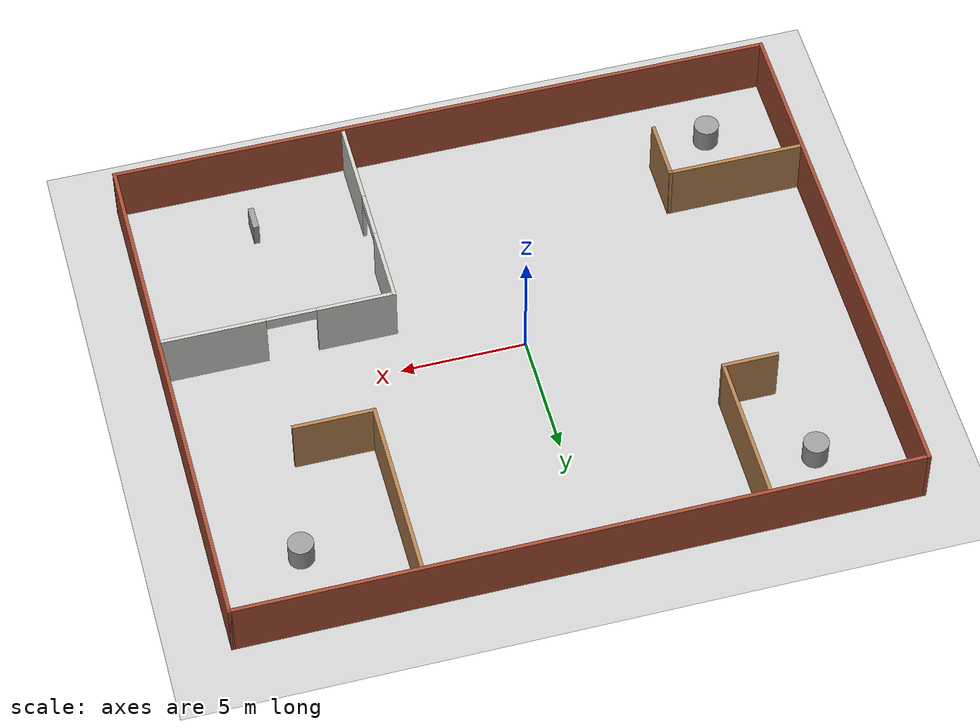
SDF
<sdf version="1.7">
 <world name="default">
  <light name="sun" type="directional">
   <pose>0 0 10 0 -0 0</pose>
   <diffuse>0.8 0.8 0.8 1</diffuse>
   <specular>0.2 0.2 0.2 1</specular>
   <attenuation>
    <range>1000</range>
    <constant>0.9</constant>
    <linear>0.01</linear>
    <quadratic>0.001</quadratic>
   </attenuation>
   <direction>-0.5 0.1 -0.9</direction>
   <spot><inner_angle>0</inner_angle><outer_angle>0</outer_angle><falloff>0</falloff></spot>
  </light>
  <model name="ground_plane">
   <static>1</static>
   <link name="link">
    <collision name="collision">
     <geometry><plane><normal>0 0 1</normal><size>100 100</size></plane></geometry>
     <surface>
      <contact><collide_bitmask>65535</collide_bitmask></contact>
      <friction><ode><mu>100</mu><mu2>50</mu2></ode></friction>
     </surface>
    </collision>
    <visual name="visual">
     <cast_shadows>0</cast_shadows>
     <geometry><plane><normal>0 0 1</normal><size>100 100</size></plane></geometry>
     <material>
      <script><uri>file://media/materials/scripts/gazebo.material</uri><name>Gazebo/Grey</name></script>
     </material>
    </visual>
   </link>
  </model>
  <gravity>0 0 -9.8</gravity>
  <magnetic_field>6e-06 2.3e-05 -4.2e-05</magnetic_field>
  <atmosphere type="adiabatic"/>
  <physics type="ode">
   <max_step_size>0.001</max_step_size>
   <real_time_factor>1</real_time_factor>
   <real_time_update_rate>1000</real_time_update_rate>
  </physics>
  <scene><ambient>0.4 0.4 0.4 1</ambient><background>0.7 0.7 0.7 1</background><shadows>1</shadows></scene>
  <spherical_coordinates>
   <surface_model>EARTH_WGS84</surface_model>
   <latitude_deg>0</latitude_deg>
   <longitude_deg>0</longitude_deg>
   <elevation>0</elevation>
   <heading_deg>0</heading_deg>
  </spherical_coordinates>
  <model name="caffee">
   <pose>0.661884 0.109586 0 0 -0 0</pose>
   <link name="Wall_0">
    <collision name="Wall_0_Collision">
     <geometry><box><size>26.75 0.15 2.5</size></box></geometry>
     <pose>0 0 1.25 0 -0 0</pose>
    </collision>
    <visual name="Wall_0_Visual">
     <pose>0 0 1.25 0 -0 0</pose>
     <geometry><box><size>26.75 0.15 2.5</size></box></geometry>
     <material>
      <script><uri>file://media/materials/scripts/gazebo.material</uri><name>Gazebo/Bricks</name></script>
      <ambient>1 1 1 1</ambient>
     </material>
     <meta><layer>0</layer></meta>
    </visual>
    <pose>0 10.55 0 0 -0 0</pose>
   </link>
   <link name="Wall_11">
    <collision name="Wall_11_Collision">
     <geometry><box><size>2.5 0.15 2.5</size></box></geometry>
     <pose>0 0 1.25 0 -0 0</pose>
    </collision>
    <visual name="Wall_11_Visual">
     <pose>0 0 1.25 0 -0 0</pose>
     <geometry><box><size>2.5 0.15 2.5</size></box></geometry>
     <material>
      <script><uri>file://media/materials/scripts/gazebo.material</uri><name>Gazebo/Wood</name></script>
      <ambient>1 1 1 1</ambient>
     </material>
     <meta><layer>0</layer></meta>
    </visual>
    <pose>-7.8681 -6.22266 0 0 -0 -1.5708</pose>
   </link>
   <link name="Wall_18">
    <collision name="Wall_18_Collision">
     <geometry><box><size>6 0.15 2.5</size></box></geometry>
     <pose>0 0 1.25 0 -0 0</pose>
    </collision>
    <visual name="Wall_18_Visual">
     <pose>0 0 1.25 0 -0 0</pose>
     <geometry><box><size>6 0.15 2.5</size></box></geometry>
     <material>
      <script><uri>file://media/materials/scripts/gazebo.material</uri><name>Gazebo/Wood</name></script>
      <ambient>1 1 1 1</ambient>
     </material>
     <meta><layer>0</layer></meta>
    </visual>
    <pose>-7.14005 7.4848 0 0 -0 -1.5708</pose>
   </link>
   <link name="Wall_19">
    <collision name="Wall_19_Collision">
     <geometry><box><size>2.25 0.15 2.5</size></box></geometry>
     <pose>0 0 1.25 0 -0 0</pose>
    </collision>
    <visual name="Wall_19_Visual">
     <pose>0 0 1.25 0 -0 0</pose>
     <geometry><box><size>2.25 0.15 2.5</size></box></geometry>
     <material>
      <script><uri>file://media/materials/scripts/gazebo.material</uri><name>Gazebo/Wood</name></script>
      <ambient>1 1 1 1</ambient>
     </material>
     <meta><layer>0</layer></meta>
    </visual>
    <pose>-8.19005 4.5598 0 0 -0 3.14159</pose>
   </link>
   <link name="Wall_2">
    <collision name="Wall_2_Collision">
     <geometry><box><size>21.25 0.15 2.5</size></box></geometry>
     <pose>0 0 1.25 0 -0 0</pose>
    </collision>
    <visual name="Wall_2_Visual">
     <pose>0 0 1.25 0 -0 0</pose>
     <geometry><box><size>21.25 0.15 2.5</size></box></geometry>
     <material>
      <script><uri>file://media/materials/scripts/gazebo.material</uri><name>Gazebo/Bricks</name></script>
      <ambient>1 1 1 1</ambient>
     </material>
     <meta><layer>0</layer></meta>
    </visual>
    <pose>13.3 -0 0 0 -0 -1.5708</pose>
   </link>
   <link name="Wall_23">
    <pose>8.6409 -2.00278 0 0 -0 3.14159</pose>
    <visual name="Wall_23_Visual_0">
     <pose>-2.55451 0 1.25 0 -0 0</pose>
     <geometry><box><size>4.14097 0.15 2.5</size></box></geometry>
     <material>
      <script><uri>file://media/materials/scripts/gazebo.material</uri><name>Gazebo/CeilingTiled</name></script>
      <ambient>1 1 1 1</ambient>
     </material>
     <meta><layer>0</layer></meta>
    </visual>
    <collision name="Wall_23_Collision_0">
     <geometry><box><size>4.14097 0.15 2.5</size></box></geometry>
     <pose>-2.55451 0 1.25 0 -0 0</pose>
    </collision>
    <visual name="Wall_23_Visual_1">
     <pose>3.06099 0 1.25 0 -0 0</pose>
     <geometry><box><size>3.12803 0.15 2.5</size></box></geometry>
     <material>
      <script><uri>file://media/materials/scripts/gazebo.material</uri><name>Gazebo/CeilingTiled</name></script>
      <ambient>1 1 1 1</ambient>
     </material>
     <meta><layer>0</layer></meta>
    </visual>
    <collision name="Wall_23_Collision_1">
     <geometry><box><size>3.12803 0.15 2.5</size></box></geometry>
     <pose>3.06099 0 1.25 0 -0 0</pose>
    </collision>
    <visual name="Wall_23_Visual_2">
     <pose>0.506473 0 2.25 0 -0 0</pose>
     <geometry><box><size>1.981 0.15 0.5</size></box></geometry>
     <material>
      <script><uri>file://media/materials/scripts/gazebo.material</uri><name>Gazebo/CeilingTiled</name></script>
      <ambient>1 1 1 1</ambient>
     </material>
     <meta><layer>0</layer></meta>
    </visual>
    <collision name="Wall_23_Collision_2">
     <geometry><box><size>1.981 0.15 0.5</size></box></geometry>
     <pose>0.506473 0 2.25 0 -0 0</pose>
    </collision>
   </link>
   <link name="Wall_24">
    <pose>4.0909 -6.17778 0 0 -0 -1.5708</pose>
    <visual name="Wall_24_Visual_0">
     <pose>-2.68786 0 1.25 0 -0 0</pose>
     <geometry><box><size>3.12428 0.15 2.5</size></box></geometry>
     <material>
      <script><uri>file://media/materials/scripts/gazebo.material</uri><name>Gazebo/CeilingTiled</name></script>
      <ambient>1 1 1 1</ambient>
     </material>
     <meta><layer>0</layer></meta>
    </visual>
    <collision name="Wall_24_Collision_0">
     <geometry><box><size>3.12428 0.15 2.5</size></box></geometry>
     <pose>-2.68786 0 1.25 0 -0 0</pose>
    </collision>
    <visual name="Wall_24_Visual_1">
     <pose>2.52504 0 1.25 0 -0 0</pose>
     <geometry><box><size>3.44993 0.15 2.5</size></box></geometry>
     <material>
      <script><uri>file://media/materials/scripts/gazebo.material</uri><name>Gazebo/CeilingTiled</name></script>
      <ambient>1 1 1 1</ambient>
     </material>
     <meta><layer>0</layer></meta>
    </visual>
    <collision name="Wall_24_Collision_1">
     <geometry><box><size>3.44993 0.15 2.5</size></box></geometry>
     <pose>2.52504 0 1.25 0 -0 0</pose>
    </collision>
    <visual name="Wall_24_Visual_2">
     <pose>-0.162824 0 2.25 0 -0 0</pose>
     <geometry><box><size>1.92579 0.15 0.5</size></box></geometry>
     <material>
      <script><uri>file://media/materials/scripts/gazebo.material</uri><name>Gazebo/CeilingTiled</name></script>
      <ambient>1 1 1 1</ambient>
     </material>
     <meta><layer>0</layer></meta>
    </visual>
    <collision name="Wall_24_Collision_2">
     <geometry><box><size>1.92579 0.15 0.5</size></box></geometry>
     <pose>-0.162824 0 2.25 0 -0 0</pose>
    </collision>
   </link>
   <link name="Wall_26">
    <collision name="Wall_26_Collision">
     <geometry><box><size>7.5 0.15 2.5</size></box></geometry>
     <pose>0 0 1.25 0 -0 0</pose>
    </collision>
    <visual name="Wall_26_Visual">
     <pose>0 0 1.25 0 -0 0</pose>
     <geometry><box><size>7.5 0.15 2.5</size></box></geometry>
     <material>
      <script><uri>file://media/materials/scripts/gazebo.material</uri><name>Gazebo/Wood</name></script>
      <ambient>1 1 1 1</ambient>
     </material>
     <meta><layer>0</layer></meta>
    </visual>
    <pose>6.11911 6.8561 0 0 -0 -1.5708</pose>
   </link>
   <link name="Wall_27">
    <collision name="Wall_27_Collision">
     <geometry><box><size>3.25 0.15 2.5</size></box></geometry>
     <pose>0 0 1.25 0 -0 0</pose>
    </collision>
    <visual name="Wall_27_Visual">
     <pose>0 0 1.25 0 -0 0</pose>
     <geometry><box><size>3.25 0.15 2.5</size></box></geometry>
     <material>
      <script><uri>file://media/materials/scripts/gazebo.material</uri><name>Gazebo/Wood</name></script>
      <ambient>1 1 1 1</ambient>
     </material>
     <meta><layer>0</layer></meta>
    </visual>
    <pose>7.66911 3.1811 0 0 -0 0</pose>
   </link>
   <link name="Wall_3">
    <collision name="Wall_3_Collision">
     <geometry><box><size>26.75 0.15 2.5</size></box></geometry>
     <pose>0 0 1.25 0 -0 0</pose>
    </collision>
    <visual name="Wall_3_Visual">
     <pose>0 0 1.25 0 -0 0</pose>
     <geometry><box><size>26.75 0.15 2.5</size></box></geometry>
     <material>
      <script><uri>file://media/materials/scripts/gazebo.material</uri><name>Gazebo/Bricks</name></script>
      <ambient>1 1 1 1</ambient>
     </material>
     <meta><layer>0</layer></meta>
    </visual>
    <pose>0 -10.55 0 0 -0 3.14159</pose>
   </link>
   <link name="Wall_4">
    <collision name="Wall_4_Collision">
     <geometry><box><size>21.25 0.15 2.5</size></box></geometry>
     <pose>0 0 1.25 0 -0 0</pose>
    </collision>
    <visual name="Wall_4_Visual">
     <pose>0 0 1.25 0 -0 0</pose>
     <geometry><box><size>21.25 0.15 2.5</size></box></geometry>
     <material>
      <script><uri>file://media/materials/scripts/gazebo.material</uri><name>Gazebo/Bricks</name></script>
      <ambient>1 1 1 1</ambient>
     </material>
     <meta><layer>0</layer></meta>
    </visual>
    <pose>-13.3 -0 0 0 -0 1.5708</pose>
   </link>
   <link name="Wall_9">
    <collision name="Wall_9_Collision">
     <geometry><box><size>5.5 0.15 2.5</size></box></geometry>
     <pose>0 0 1.25 0 -0 0</pose>
    </collision>
    <visual name="Wall_9_Visual">
     <pose>0 0 1.25 0 -0 0</pose>
     <geometry><box><size>5.5 0.15 2.5</size></box></geometry>
     <material>
      <script><uri>file://media/materials/scripts/gazebo.material</uri><name>Gazebo/Wood</name></script>
      <ambient>1 1 1 1</ambient>
     </material>
     <meta><layer>0</layer></meta>
    </visual>
    <pose>-10.5431 -5.04766 0 0 -0 0</pose>
   </link>
   <static>1</static>
  </model>
  <model name="unit_box">
   <pose>8.97497 -8.10918 0.499065 -0 -0.000446 1e-06</pose>
   <link name="link">
    <inertial>
     <mass>1</mass>
     <inertia>
      <ixx>0.166667</ixx>
      <ixy>0</ixy>
      <ixz>0</ixz>
      <iyy>0.166667</iyy>
      <iyz>0</iyz>
      <izz>0.166667</izz>
     </inertia>
    </inertial>
    <collision name="collision"><geometry><box><size>0.238485 1 1</size></box></geometry></collision>
    <visual name="visual">
     <geometry><box><size>0.238485 1 1</size></box></geometry>
     <material>
      <script><name>Gazebo/Grey</name><uri>file://media/materials/scripts/gazebo.material</uri></script>
     </material>
    </visual>
   </link>
  </model>
  <model name="unit_cylinder">
   <pose>10.6464 7.44902 0.499993 -3e-06 -4e-06 -0</pose>
   <link name="link">
    <inertial>
     <mass>1</mass>
     <inertia><ixx>0.145833</ixx><ixy>0</ixy><ixz>0</ixz><iyy>0.145833</iyy><iyz>0</iyz><izz>0.125</izz></inertia>
    </inertial>
    <collision name="collision">
     <geometry><cylinder><radius>0.5</radius><length>1</length></cylinder></geometry>
    </collision>
    <visual name="visual">
     <geometry><cylinder><radius>0.5</radius><length>1</length></cylinder></geometry>
     <material>
      <script><name>Gazebo/Grey</name><uri>file://media/materials/scripts/gazebo.material</uri></script>
     </material>
    </visual>
   </link>
  </model>
  <model name="unit_cylinder_clone">
   <pose>-9.19759 7.98631 0.499993 -3e-06 -4e-06 -0</pose>
   <link name="link">
    <inertial>
     <mass>1</mass>
     <inertia><ixx>0.145833</ixx><ixy>0</ixy><ixz>0</ixz><iyy>0.145833</iyy><iyz>0</iyz><izz>0.125</izz></inertia>
    </inertial>
    <collision name="collision">
     <geometry><cylinder><radius>0.5</radius><length>1</length></cylinder></geometry>
    </collision>
    <visual name="visual">
     <geometry><cylinder><radius>0.5</radius><length>1</length></cylinder></geometry>
     <material>
      <script><name>Gazebo/Grey</name><uri>file://media/materials/scripts/gazebo.material</uri></script>
     </material>
    </visual>
   </link>
  </model>
  <model name="unit_cylinder_clone_0">
   <pose>-9.70036 -8.11134 0.499997 3e-06 4e-06 -0</pose>
   <link name="link">
    <inertial>
     <mass>1</mass>
     <inertia><ixx>0.145833</ixx><ixy>0</ixy><ixz>0</ixz><iyy>0.145833</iyy><iyz>0</iyz><izz>0.125</izz></inertia>
    </inertial>
    <collision name="collision">
     <geometry><cylinder><radius>0.5</radius><length>1</length></cylinder></geometry>
    </collision>
    <visual name="visual">
     <geometry><cylinder><radius>0.5</radius><length>1</length></cylinder></geometry>
     <material>
      <script><name>Gazebo/Grey</name><uri>file://media/materials/scripts/gazebo.material</uri></script>
     </material>
    </visual>
   </link>
  </model>
 </world>
</sdf>
